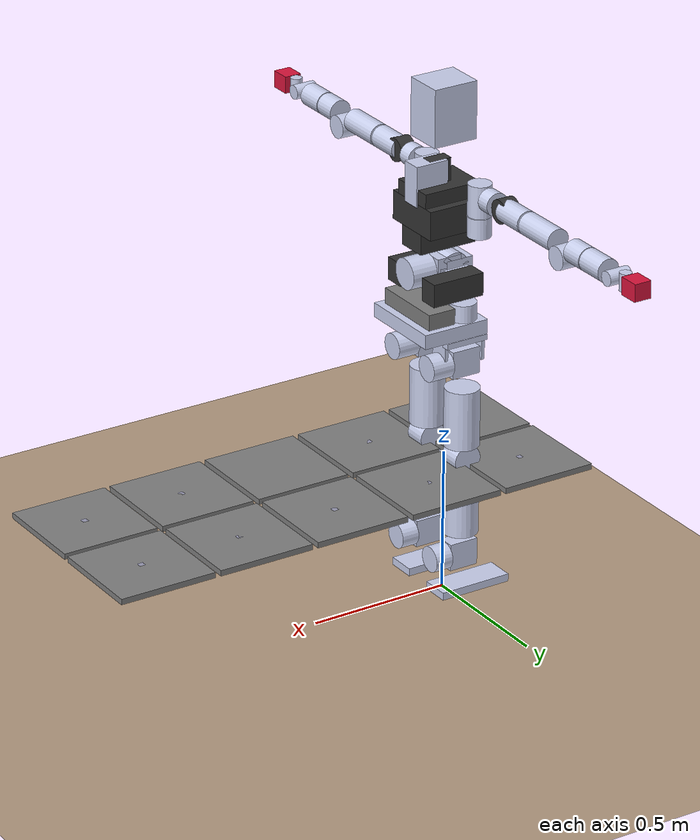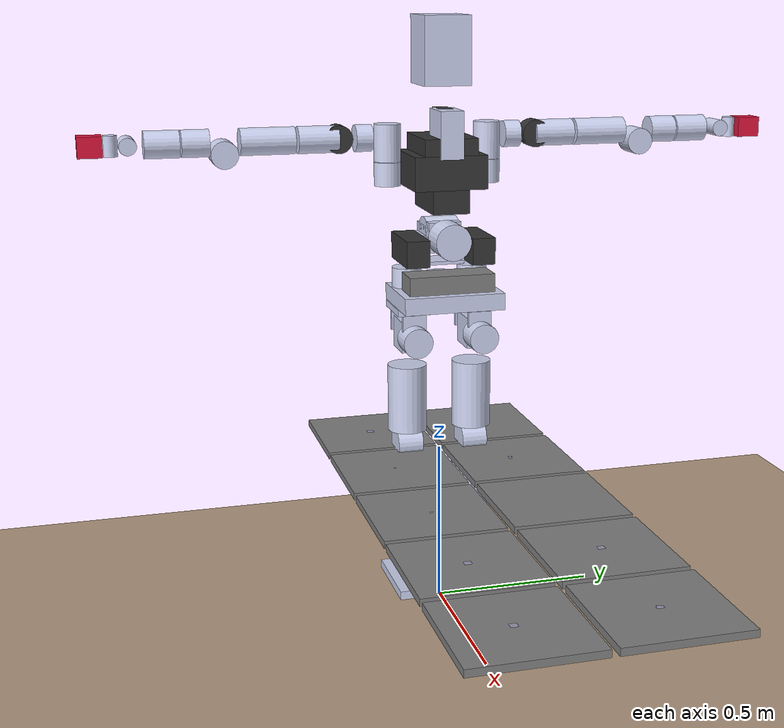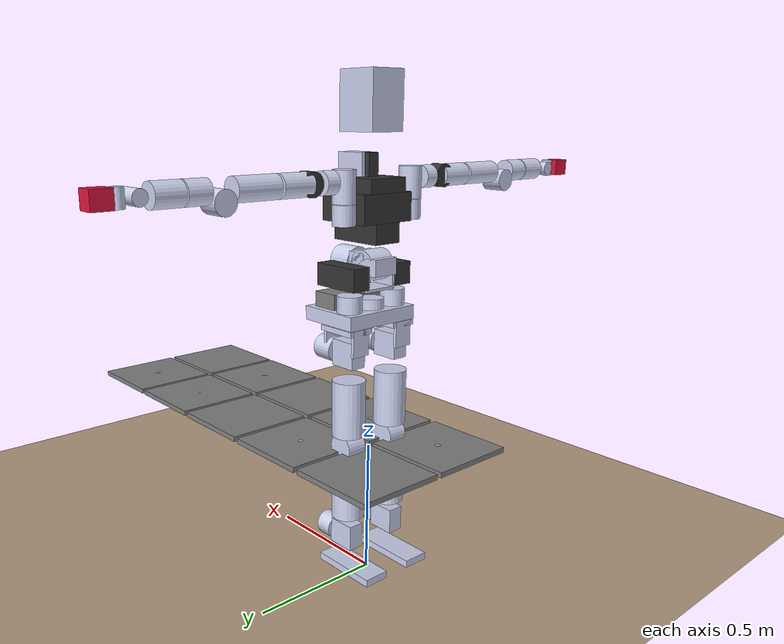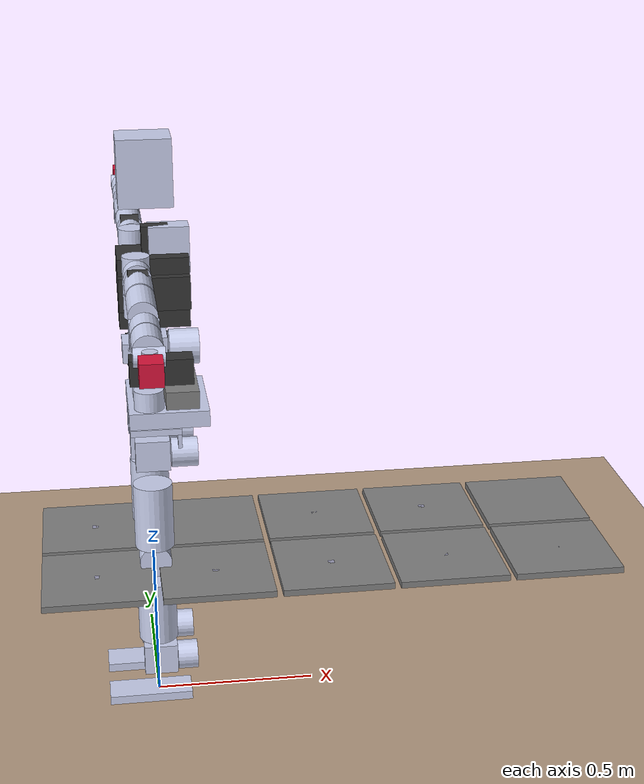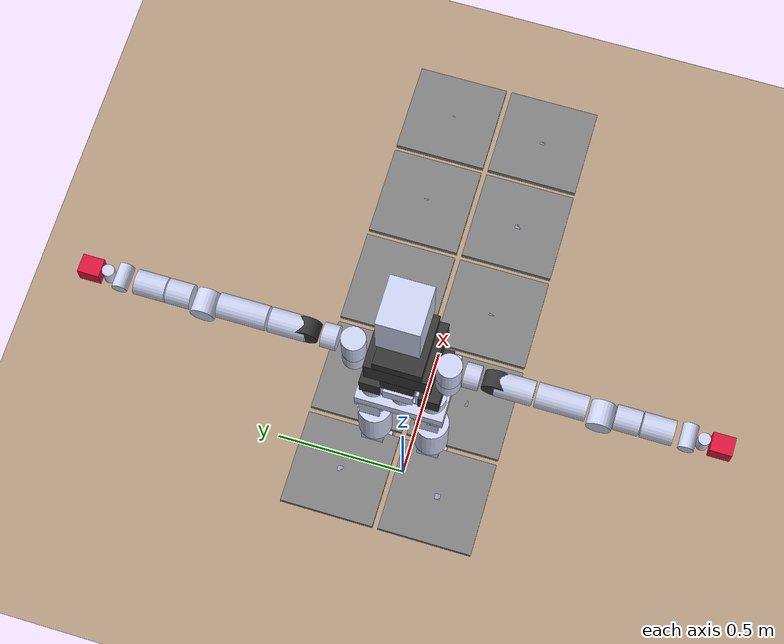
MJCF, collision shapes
<mujoco model="dyros_red_description">
    <compiler angle="radian" meshdir="../meshes/"/>

    <include file="red_base.xml"/>

    <size njmax="500" nconmax="100" />

    <default>
        <default class="soft">
            <joint stiffness="100000" damping="2000" />
        </default>
    </default>

    <option timestep='0.0005' iterations="100" tolerance="1e-11" solver="Newton" jacobian="dense" cone="elliptic" noslip_iterations="75" noslip_tolerance="1e-9"/>

    <worldbody>
          <body name="Base_Plate0" pos="-0.18 0.18 0.5">
            <geom type="box" size="0.01 0.01 0.01" class="viz"/>
            <body name="Plate00" pos="0 0 0">
                <geom type="box" size="0.17 0.17 0.01"/>
                <joint name="stjoint0" type="slide" axis="0 0 1" class="soft"/>
            </body>
        </body>

        <body name="Base_Plate1" pos="0.18 -0.18 0.5">
            <geom type="box" size="0.01 0.01 0.01" class="viz"/>
            <body name="Plate01" pos="0 0 0">
                <geom type="box" size="0.17 0.17 0.01"/>
                <joint name="stjoint1" type="slide" axis="0 0 1" class="soft"/>
            </body>
        </body>

        <body name="Base_Plate2" pos="-0.18 -0.18 0.5">
            <geom type="box" size="0.01 0.01 0.01" class="viz"/>
            <body name="Plate02" pos="0 0 0">
                <geom type="box" size="0.17 0.17 0.01"/>
                <joint name="stjoint2" type="slide" axis="0 0 1" class="soft"/>
            </body>
        </body>

        <body name="Base_Plate3" pos="0.18 0.18 0.5">
            <geom type="box" size="0.01 0.01 0.01" class="viz"/>
            <body name="Plate03" pos="0 0 0">
                <geom type="box" size="0.17 0.17 0.01"/>
                <joint name="stjoint3" type="slide" axis="0 0 1" class="soft"/>
            </body>
        </body>

        <body name="Base_Plate4" pos="0.54 -0.18 0.5">
            <geom type="box" size="0.01 0.01 0.01" class="viz"/>
            <body name="Plate04" pos="0 0 0">
                <geom type="box" size="0.17 0.17 0.01"/>
                <joint name="stjoint4" type="slide" axis="0 0 1" class="soft"/>
            </body>
        </body>

        <body name="Base_Plate5" pos="0.54 0.18 0.5">
            <geom type="box" size="0.01 0.01 0.01" class="viz"/>
            <body name="Plate05" pos="0 0 0">
                <geom type="box" size="0.17 0.17 0.01"/>
                <joint name="stjoint5" type="slide" axis="0 0 1" class="soft"/>
            </body>
        </body>

        <body name="Base_Plate6" pos="0.90 0.18 0.5">
            <geom type="box" size="0.01 0.01 0.01" class="viz"/>
            <body name="Plate06" pos="0 0 0">
                <geom type="box" size="0.17 0.17 0.01"/>
                <joint name="stjoint6" type="slide" axis="0 0 1" class="soft"/>
            </body>
        </body>

        <body name="Base_Plate7" pos="0.90 -0.18 0.5">
            <geom type="box" size="0.01 0.01 0.01" class="viz"/>
            <body name="Plate07" pos="0 0 0">
                <geom type="box" size="0.17 0.17 0.01"/>
                <joint name="stjoint7" type="slide" axis="0 0 1" class="soft"/>
            </body>
        </body>

        <body name="Base_Plate8" pos="1.26 -0.18 0.5">
            <geom type="box" size="0.01 0.01 0.01" class="viz"/>
            <body name="Plate08" pos="0 0 0">
                <geom type="box" size="0.17 0.17 0.01"/>
                <joint name="stjoint8" type="slide" axis="0 0 1" class="soft"/>
            </body>
        </body>

        <body name="Base_Plate9" pos="1.26 0.18 0.5">
            <geom type="box" size="0.01 0.01 0.01" class="viz"/>
            <body name="Plate09" pos="0 0 0">
                <geom type="box" size="0.17 0.17 0.01"/>
                <joint name="stjoint9" type="slide" axis="0 0 1" class="soft"/>
            </body>
        </body>
    </worldbody>

    <keyframe>
        <!--Initial Position Setting -->
        <key name="soft" time="0" qpos ="-0.18 0 1.43683 1 0 0 0
								0 0 -0.24 0.6 -0.36 0
								0 0 -0.24 0.6 -0.36 0
								0 0 0
								-0.3 -0.3 -1.5 1.27 2 0 0 0
								0.3 0.3 1.5 -1.27 -2 0 0 0
                                0 0 0 0 0 0 0 0 0 0"/>

    </keyframe>
</mujoco>

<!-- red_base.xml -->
<mujoco>
    <default>
        <joint damping="2.0" frictionloss="0.01"/>
        <motor ctrllimited="true" ctrlrange="-300 300"/>
        <default class="viz">
            <geom contype="0" conaffinity="0" group="1" type="mesh" rgba=".6 .6 .7 1"/>
        </default>
        <!--Since group 2 is collision geom, rendering of group 2 geom is disabled by default in mujoco, but enabling is possible by press '2' on keyboard -->
        <default class="cls">
            <geom group="2" rgba="0.79216 0.81961 0.93333 0.5"/>
        </default>
        <default class="cls_f">
            <geom group="2" rgba="0.79216 0.81961 0.93333 0.1" friction="1 0.005 0.0001"/>
        </default>
        <default class="FTsensor">
            <site type="cylinder" size="0.005 0.005" group="4" rgba=".1 .1 .9 1"/>
        </default>
    </default>
    <visual>
        <quality shadowsize="2048" offsamples="16"/>
        <map stiffness="10" znear="0.05"/>
    </visual>

    <asset>
        <mesh name="Pelvis_link" file="Pelvis_link2.STL" scale="0.001 0.001 0.001"/>
        <mesh name="HipRoll_R_link" file="HipRoll_R_link.STL" />
        <mesh name="HipCenter_R_Link" file="HipCenter_R_Link.STL" />
        <mesh name="Thigh_R_Link" file="Thigh_R_Link.STL" />
        <mesh name="Knee_R_Link" file="Knee_R_Link.STL" />
        <mesh name="AnkleCenter_R_Link" file="AnkleCenter_R_Link.STL" />
        <mesh name="AnkleRoll_R_Link" file="AnkleRoll_R_Link.STL" />
        <mesh name="HipRoll_L_Link" file="HipRoll_L_Link.STL" />
        <mesh name="HipCenter_L_Link" file="HipCenter_L_Link.STL" />
        <mesh name="Thigh_L_Link" file="Thigh_L_Link.STL" />
        <mesh name="Knee_L_Link" file="Knee_L_Link.STL" />
        <mesh name="AnkleCenter_L_Link" file="AnkleCenter_L_Link.STL" />
        <mesh name="AnkleRoll_L_Link" file="AnkleRoll_L_Link.STL" />
        <mesh name="waist1" file="waistyaw.STL" scale="0.001 0.001 0.001"/>
        <mesh name="waist2" file="waist2.STL" />
        <mesh name="upperbody" file="upperbody.STL" />
        <mesh name="R_shoulder1" file="R_shoulder1.STL" />
        <mesh name="R_shoulder2" file="R_shoulder2.STL" />
        <mesh name="R_shoulder3" file="R_shoulder3.STL" />
        <mesh name="R_arm" file="R_arm.STL" />
        <mesh name="R_elbow" file="R_elbow.STL" />
        <mesh name="R_forearm" file="R_forearm.STL" />
        <mesh name="R_wrist1" file="R_wrist1.STL" />
        <mesh name="L_shoulder1" file="L_shoulder1.STL" />
        <mesh name="L_shoulder2" file="L_shoulder2.STL" />
        <mesh name="L_shoulder3" file="L_shoulder3.STL" />
        <mesh name="L_arm" file="L_arm.STL" />
        <mesh name="L_elbow" file="L_elbow.STL" />
        <mesh name="L_forearm" file="L_forearm.STL" />
        <mesh name="L_wrist1" file="L_wrist1.STL" />
        <mesh name="neck" file="neck.STL" />
        <mesh name="head" file="head.STL" />
        <mesh name="hand" file="wrist2joint.STL" scale="0.001 0.001 0.001"/>
        <!--texture type="skybox" builtin="gradient" width="128" height="128" rgb1="1 1 1" rgb2="0 0 0"/-->
        <texture type="skybox" builtin="gradient" width="128" height="128" rgb1="0.4 0.6 0.8" rgb2="0 0 0"/>
        <texture name="texgeom" type="cube" builtin="flat" mark="cross" width="128" height="128" rgb1="0.6 0.6 0.6" rgb2="0.6 0.6 0.6" markrgb="1 1 1"/>
        <texture name="texplane" type="2d" builtin="checker" rgb1=".4 .4 .4" rgb2=".6 .6 .6" width="512" height="512"/>
        <material name='geom' texture="texgeom" texuniform="true"/>
        <material name='MatPlane' reflectance='0.3' texture="texplane" texrepeat="1 1" texuniform="true"/>
        <material name='MatPlane2' reflectance='0.3' />
    </asset>

    <worldbody>
        <geom name="ground" type="plane" pos="0 0 0" size="10 10 .05" rgba="0.7 0.6 0.5 1" material="MatPlane2" group="3"/>

        <!--geom pos="0 0 0" type="plane" size="10 10 .5" rgba=".7 .7 .7 1" material="MatPlane"/-->

        <!--geom name="box" type="box" size="0.5 0.5 0.5" pos="-1.5 0 0.5"/-->
        <!--geom name="box2" type="box" size="0.2 0.2 0.5" pos="-1.5 0 1.2"/-->
        <light directional="true" diffuse=".8 .8 .8" pos="0 0 10" dir="0 0 -10"/>
        <light directional="true" diffuse=".5 .5 .5" pos="10 0 0" dir="-10 0 0"/>
        <!--light mode='targetbodycom' target='base_link' directional='false' diffuse='.8 .8 .8' specular='0.8 0.8 0.8' pos='0 0 10.0' dir='0 0 -1'/-->

        <body name="base_link" pos="0 0 1" euler="0 0 3.1415">
            <joint name="virtual_joint" type="free" limited='false' frictionloss="0" damping="0" stiffness="0" armature="0"/>
            <inertial pos="-0.0099622 0 0.012618" quat="0.5 0.5 -0.5 0.5" mass="0.90054" diaginertia="0.010198 0.0094751 0.0022311" />
            <geom class="viz" rgba="0.20313 0.20313 0.20313 1" quat="0.5 0.5 0.5 0.5" mesh="Pelvis_link" />
            <geom size="0.045 0.044" pos="0 0 0.019" type="cylinder" class="cls" />
            <geom size="0.045 0.055" pos="0 0.1025 0.03" type="cylinder" class="cls" />
            <geom size="0.045 0.055" pos="0 -0.1025 0.03" type="cylinder" class="cls" />
            <geom size="0.12 0.1525 0.025" pos="-0.058 0 0" type="box" class="cls" />
            <geom size="0.05 0.13 0.05" pos="-0.1 0 0.03" type="box" group="1"/>
            <site name="Pelvis_IMU" type="cylinder" size="0.005 0.005" group="4" rgba=".1 .1 .9 1"/>
            <body name="R_HipRoll_Link" pos="0 -0.1025 -0.1225">
                <inertial pos="-0.06477 0 0.05149" quat="-4.55125e-06 0.706109 4.5641e-06 0.708103" mass="2.679" diaginertia="0.114073 0.114073 0.114073" />
                <joint name="R_HipRoll_Joint" pos="0 0 0" axis="0 0 1" limited="true" range="-3.14 3.14" />
                <geom class="viz" rgba="0.20313 0.20313 0.20313 1" mesh="HipRoll_R_link" />
                <geom size="0.045 0.04" pos="-0.1 0 0" quat="0.707107 0 0.707107 0" type="cylinder" class="cls" />
                <geom size="0.077 0.05 0.01" pos="-0.016 0 0.085" type="box" class="cls" />
                <geom size="0.006 0.036 0.0475" pos="0.055 0 0.0475" type="box" class="cls" />
                <geom size="0.006 0.036 0.0475" pos="-0.087 0 0.0475" type="box" class="cls" />
                <body name="R_HipCenter_Link" pos="0 0 0">
                    <inertial pos="-0.04801 -0.0022 2e-05" quat="0.999982 -0.00595644 4.6683e-06 -2.7807e-08" mass="2.67" diaginertia="0.124407 0.124407 0.124407" />
                    <joint name="R_HipCenter_Joint" pos="0 0 0" axis="1 0 0" limited="true" range="-3.14 3.14" />
                    <geom class="viz" rgba="0.20313 0.20313 0.20313 1" mesh="HipCenter_R_Link" />
                    <geom size="0.05225 0.03 0.0475" pos="-0.0045 0 0" type="box" class="cls" />
                    <body name="R_Thigh_Link" pos="0 0 0">
                        <inertial pos="-0.00042 -0.00032 -0.18904" quat="0.707068 0.00145661 -0.000977354 0.707144" mass="5.366" diaginertia="0.339107 0.339107 0.339107" />
                        <joint name="R_Thigh_Joint" pos="0 0 0" axis="0 1 0" limited="true" range="-3.14 3.14" />
                        <geom size="0.049 0.038815" pos="0 0 -0.35" quat="0.707107 0.707107 0 0" type="cylinder" class="cls" />
                        <geom size="0.06 0.10375" pos="0 0 -0.2023" type="cylinder" class="cls" />
                        <geom class="viz" rgba="0.85938 0.07813 0.23438 1" mesh="Thigh_R_Link" />
                        <body name="R_Knee_Link" pos="0 0 -0.35">
                            <inertial pos="0.00429 0.00214 -0.1428" quat="0.707067 0.00548297 0.00738884 0.707087" mass="3.883" diaginertia="0.23895 0.23895 0.23895" />
                            <joint name="R_Knee_Joint" pos="0 0 0" axis="0 1 0" limited="true" range="0 2.62" />
                            <geom class="viz" rgba="0.85938 0.07813 0.23438 1" mesh="Knee_R_Link" />
                            <geom size="0.06 0.1" pos="0 0 -0.175" type="cylinder" class="cls" />
                            <body name="R_AnkleCenter_Link" pos="0 0 -0.35">
                                <inertial pos="-0.00419 -0.0018 -0.0003" quat="0.498858 0.50114 0.501134 0.498863" mass="2.51" diaginertia="0.139901 0.139901 0.139901" />
                                <joint name="R_AnkleCenter_Joint" pos="0 0 0" axis="0 1 0" limited="true" range="-3.14 3.14" />
                                <geom class="viz" rgba="0.20313 0.20313 0.20313 1" mesh="AnkleCenter_R_Link" />
                                <geom size="0.05225 0.03 0.0475" pos="-0.0045 0 0" type="box" class="cls" />
                                <body name="R_AnkleRoll_Link" pos="0 0 0">
                                    <inertial pos="-0.00802 0 -0.08535" quat="0.999815 -0.000353889 0.0192239 9.30274e-05" mass="3.464" diaginertia="0.07616 0.07616 0.07616" />
                                    <joint name="R_AnkleRoll_Joint" pos="0 0 0" axis="1 0 0" limited="true" range="-3.14 3.14" />
                                    <geom class="viz" rgba="0.85938 0.07813 0.23438 1" mesh="AnkleRoll_R_Link" />
                                    <geom size="0.045 0.03125" pos="-0.08875 0 0" quat="0.707107 0 -0.707107 0" type="cylinder" class="cls" />
                                    <body name="R_Foot_Plate" pos="0 0 -0.1233">
                                        <inertial pos="0.0 0.0 0.0" quat="0.0 0.0 0 1" mass="0.0001" diaginertia="0.0001 0.0001 0.0001" />
                                        <geom size="0.13 0.05 0.0135" pos="0.0317 0 0" type="box" class="cls_f"/>
                                        <site class="FTsensor" name="RF_FT" pos="0 0 0.0135"/>
                                    </body>
                                </body>
                            </body>
                        </body>
                    </body>
                </body>
            </body>
            <body name="L_HipRoll_Link" pos="0 0.1025 -0.1225">
                <inertial pos="-0.06477 0 0.05149" quat="-4.55125e-06 0.706109 4.5641e-06 0.708103" mass="2.679" diaginertia="0.114073 0.114073 0.114073" />
                <joint name="L_HipRoll_Joint" pos="0 0 0" axis="0 0 1" limited="true" range="-3.14 3.14" />
                <geom class="viz" rgba="0.20313 0.20313 0.20313 1" mesh="HipRoll_L_Link" />
                <geom size="0.045 0.04" pos="-0.1 0 0" quat="0.707107 0 0.707107 0" type="cylinder" class="cls" />
                <geom size="0.077 0.05 0.01" pos="-0.016 0 0.085" type="box" class="cls" />
                <geom size="0.006 0.036 0.0475" pos="0.055 0 0.0475" type="box" class="cls" />
                <geom size="0.006 0.036 0.0475" pos="-0.087 0 0.0475" type="box" class="cls" />
                <body name="L_HipCenter_Link" pos="0 0 0">
                    <inertial pos="-0.04801 0.0022 2e-05" quat="0.999982 -0.00595644 4.6683e-06 -2.7807e-08" mass="2.67" diaginertia="0.124407 0.124407 0.124407" />
                    <joint name="L_HipCenter_Joint" pos="0 0 0" axis="1 0 0" limited="true" range="-3.14 3.14" />
                    <geom class="viz" rgba="0.20313 0.20313 0.20313 1" mesh="HipCenter_L_Link" />
                    <geom size="0.05225 0.03 0.0475" pos="-0.0045 0 0" type="box" class="cls" />
                    <body name="L_Thigh_Link" pos="0 0 0">
                        <inertial pos="-0.00042 0.00032 -0.18904" quat="0.707068 0.00145661 -0.000977354 0.707144" mass="5.366" diaginertia="0.339107 0.339107 0.339107" />
                        <joint name="L_Thigh_Joint" pos="0 0 0" axis="0 1 0" limited="true" range="-3.14 3.14" />
                        <geom class="viz" rgba="0.85938 0.07813 0.23438 1" mesh="Thigh_L_Link" />
                        <geom size="0.049 0.038815" pos="0 0 -0.35" quat="0.707107 0.707107 0 0" type="cylinder" class="cls" />
                        <geom size="0.06 0.10375" pos="0 0 -0.2023" type="cylinder" class="cls" />
                        <body name="L_Knee_Link" pos="0 0 -0.35">
                            <inertial pos="0.00429 -0.00214 -0.1428" quat="0.707067 0.00548297 0.00738884 0.707087" mass="3.883" diaginertia="0.23895 0.23895 0.23895" />
                            <joint name="L_Knee_Joint" pos="0 0 0" axis="0 1 0" limited="true" range="0 2.62" />
                            <geom class="viz" rgba="0.85938 0.07813 0.23438 1" mesh="Knee_L_Link" />
                            <geom size="0.06 0.1" pos="0 0 -0.175" type="cylinder" class="cls" />
                            <body name="L_AnkleCenter_Link" pos="0 0 -0.35">
                                <inertial pos="-0.00419 0.0018 -0.0003" quat="0.498858 0.50114 0.501134 0.498863" mass="2.51" diaginertia="0.139901 0.139901 0.139901" />
                                <joint name="L_AnkleCenter_Joint" pos="0 0 0" axis="0 1 0" limited="true" range="-3.14 3.14" />
                                <geom class="viz" rgba="0.20313 0.20313 0.20313 1" mesh="AnkleCenter_L_Link" />
                                <geom size="0.05225 0.03 0.0475" pos="-0.0045 0 0" type="box" class="cls" />
                                <body name="L_AnkleRoll_Link" pos="0 0 0">
                                    <inertial pos="-0.00802 0 -0.08535" quat="0.999815 -0.000353889 0.0192239 9.30274e-05" mass="3.464" diaginertia="0.07616 0.07616 0.07616" />
                                    <joint name="L_AnkleRoll_Joint" pos="0 0 0" axis="1 0 0" limited="true" range="-3.14 3.14" />
                                    <geom class="viz" rgba="0.85938 0.07813 0.23438 1" mesh="AnkleRoll_L_Link" />
                                    <geom size="0.045 0.03125" pos="-0.08875 0 0" quat="0.707107 0 -0.707107 0" type="cylinder" class="cls" />
                                    <body name="L_Foot_Plate" pos="0 0 -0.1233">
                                        <inertial pos="0.0 0.0 0.0" quat="0.0 0.0 0 1" mass="0.0001" diaginertia="0.0001 0.0001 0.0001" />
                                        <geom size="0.13 0.05 0.0135" pos="0.0317 0 0" type="box" class="cls_f"/>
                                        <site class="FTsensor" name="LF_FT" pos="0 0 0.0135"/>
                                    </body>
                                </body>
                            </body>
                        </body>
                    </body>
                </body>
            </body>
            <body name="Waist1_Link" pos="0 0 0.18">
                <inertial pos="0 0 -0.04182" quat="0.707107 0.707107 0 0" mass="0.74235" diaginertia="0.00325468 0.00270188 0.00165546" />
                <joint name="Waist1_Joint" pos="0 0 0" axis="0 0 1" limited="true" range="-2.094 2.094" />
                <geom class="viz" rgba="0.85938 0.07813 0.23438 1" pos="0 0 -0.085" quat="0 0.707107 0 0.707107" mesh="waist1" />
                <geom size="0.047 0.065 0.005" pos="0 0 -0.081" type="box" class="cls" />
                <geom size="0.047 0.005 0.0455" pos="0 0.06 -0.0405" type="box" class="cls" />
                <geom size="0.047 0.005 0.0455" pos="0 -0.06 -0.0405" type="box" class="cls" />
                <geom size="0.095 0.035 0.04" pos="-0.04 -0.1 -0.035" type="box" rgba="0.20313 0.20313 0.20313 1" group="1"/>
                <geom size="0.095 0.035 0.04" pos="-0.04 0.1 -0.035" type="box" rgba="0.20313 0.20313 0.20313 1" group="1"/>
                <body name="Waist2_Link" pos="0 0 0">
                    <inertial pos="-0.00065 0 1e-05" quat="0 0.707107 0 0.707107" mass="3.27104" diaginertia="0.00602216 0.0049746 0.00462286" />
                    <joint name="Waist2_Joint" pos="0 0 0" axis="0 1 0" limited="true" range="-2.094 2.094" />
                    <geom class="viz" rgba="0.20313 0.20313 0.20313 1" mesh="waist2" />
                    <geom size="0.055 0.05" quat="0.707107 0.707107 0 0" type="cylinder" class="cls" />
                    <geom size="0.05 0.05 0.03" pos="0.02 0 0" type="box" class="cls" />
                    <geom size="0.045 0.05 0.0455" pos="-0.02 0 0" type="box" class="cls" />
                    <body name="Upperbody_Link" pos="0 0 0">
                        <inertial pos="-0.04733 0 0.16266" quat="0.991857 0 -0.127356 0" mass="16.4339" diaginertia="0.274087 0.242243 0.173295" />
                        <joint name="Upperbody_Joint" pos="0 0 0" axis="-1 0 0" limited="true" range="-2.094 2.094" />
                        <geom class="viz" rgba="0.85938 0.07813 0.23438 1" mesh="upperbody" />
                        <geom size="0.105 0.11 0.05" pos="-0.03 0 0.2" type="box" rgba="0.20313 0.20313 0.20313 1" group="1"/>
                        <geom size="0.105 0.08 0.025" pos="-0.03 0 0.275" type="box" rgba="0.20313 0.20313 0.20313 1" group="1"/>
                        <geom size="0.105 0.055 0.035" pos="-0.03 0 0.115" type="box" rgba="0.20313 0.20313 0.20313 1" group="1"/>
                        <geom size="0.04 0.022 0.07" pos="-0.04 0 0.31" type="box" rgba="0.20313 0.20313 0.20313 1" group="1" />

                        <geom size="0.105 0.11 0.05" pos="-0.03 0 0.2" type="box" contype="0" conaffinity="0" class="cls"/>
                        <geom size="0.105 0.08 0.025" pos="-0.03 0 0.275" type="box" contype="0" conaffinity="0" class="cls"/>
                        <geom size="0.105 0.055 0.035" pos="-0.03 0 0.115" type="box" contype="0" conaffinity="0" class="cls"/>

                        <geom size="0.06 0.035 0.07" pos="-0.08 0 0.31" type="box" class="cls" />
                        <geom size="0.054 0.045" pos="-0.115 0 0" quat="0.707107 0 0.707107 0" type="cylinder" class="cls" />
                        <geom size="0.04 0.035" pos="0.023 0.154 0.185" type="cylinder" class="cls" />
                        <geom size="0.04 0.035" pos="0.023 -0.154 0.185" type="cylinder" class="cls" />

                        <geom class="viz" rgba="0.20313 0.20313 0.20313 1" pos="-0.036 0 0.3795" mesh="neck" />
                        <geom class="viz" rgba="0.85938 0.07813 0.23438 1" pos="-0.036 0 0.407" mesh="head" />
                        <geom class="cls" size="0.08 0.07 0.1" type="box" pos="-0.016 0 0.547"/>
                        <camera name="Head camera" euler="0 -1.5708 -1.5708" fovy="80" pos="0.084 0 0.647"/>

                        <body name="R_Shoulder1_Link" pos="0.023 -0.154 0.2275">
                            <inertial pos="-3e-05 -0.00397 0.06029" quat="0.678735 -0.0962618 0.0973029 0.721516" mass="1.6762" diaginertia="0.00195894 0.0019255 0.00165624" />
                            <joint name="R_Shoulder1_Joint" pos="0 0 0" axis="0 0 1" limited="true" range="-1.54 2.09" />
                            <geom class="viz" rgba="0.85938 0.07813 0.23438 1" mesh="R_shoulder1" />
                            <geom size="0.04 0.055" pos="0 0 0.05" type="cylinder" class="cls" />
                            <body name="R_Shoulder2_Link" pos="0 -0.0341 0.065">
                                <inertial pos="0.00107 -0.0491 -1e-05" quat="0.51724 0.479014 -0.520322 0.481948" mass="0.4016" diaginertia="0.00106758 0.000992068 0.000622085" />
                                <joint name="R_Shoulder2_Joint" pos="0 0 0" axis="0 -1 0" limited="true" range="-3.14159 3.14159" />
                                <geom class="viz" rgba="0.20313 0.20313 0.20313 1" mesh="R_shoulder2" />
                                <geom size="0.04 0.025" pos="0 -0.04 0" quat="0.707107 0.707107 0 0" type="cylinder" class="cls" />
                                <body name="R_Shoulder3_Link" pos="0 -0.115 0">
                                    <inertial pos="0.00262 -0.04826 0.00023" quat="0.708306 0.705235 0.0242641 0.0189048" mass="2.90141" diaginertia="0.00846389 0.00829694 0.00247136" />
                                    <joint name="R_Shoulder3_Joint" pos="0 0 0" axis="-1 0 0" limited="true" range="-1.9199 1.9199" />
                                    <geom size="0.041 0.028" pos="0.0 0 0" quat="0.707107 0 0.707107 0" type="cylinder" class="viz" rgba="0.20313 0.20313 0.20313 1"/>
                                    <geom class="viz" rgba="0.20313 0.20313 0.20313 1" mesh="R_shoulder3" />
                                    <geom size="0.04 0.06" pos="0 -0.06 0" quat="0.707107 0.707107 0 0" type="cylinder" class="cls" />
                                    <body name="R_Armlink_Link" pos="0 -0.1281 0">
                                        <inertial pos="0.01896 -0.11642 -0.0119" quat="0.503607 0.520285 -0.555379 0.408947" mass="0.43517" diaginertia="0.00318243 0.00291909 0.000624466" />
                                        <joint name="R_Armlink_Joint" pos="0 0 0" axis="0 -1 0" limited="true" range="-3.14159 3.14159" />
                                        <geom size="0.04 0.08" pos="0 -0.08 0" quat="0.707107 0.707107 0 0" type="cylinder" class="cls" />
                                        <geom class="viz" rgba="0.85938 0.07813 0.23438 1" mesh="R_arm" />
                                        <body name="R_Elbow_Link" pos="0 -0.207 -0.0325">
                                            <inertial pos="-0.00136 -0.05256 0.01764" quat="0.517663 0.708306 -0.39581 0.27141" mass="1.96511" diaginertia="0.0065354 0.00631431 0.00138011" />
                                            <joint name="R_Elbow_Joint" pos="0 0 0" axis="1 0 0" limited="true" range="-2.967 3.14159" />
                                            <geom size="0.034 0.027" pos="0.003 0 0" quat="0.707107 0 0.707107 0" type="cylinder" class="viz" rgba="0.20313 0.20313 0.20313 1"/>
                                            <geom size="0.04 0.04" pos="0 -0.08 0.0325" quat="0.707107 0.707107 0 0" type="cylinder" class="cls" />
                                            <geom size="0.04 0.04" quat="0.707107 0 0.707107 0" type="cylinder" class="cls" />
                                            <geom class="viz" rgba="0.20313 0.20313 0.20313 1" mesh="R_elbow" />
                                            <body name="R_Forearm_Link" pos="0 -0.1244 0.0325">
                                                <inertial pos="0.01426 -0.0767 0.00033" quat="0.55187 0.502809 -0.506596 0.431257" mass="0.30234" diaginertia="0.00126963 0.00106149 0.000388409" />
                                                <joint name="R_Forearm_Joint" pos="0 0 0" axis="0 -1 0" limited="true" range="-3.14159 3.14159" />
                                                <geom size="0.04 0.05" pos="0 -0.05 0" quat="0.707107 0.707107 0 0" type="cylinder" class="cls" />
                                                <geom size="0.025 0.04" pos="0 -0.1451 0" quat="0.707107 0 0.707107 0" type="cylinder" class="cls" />
                                                <geom class="viz" rgba="0.85938 0.07813 0.23438 1" mesh="R_forearm" />
                                                <body name="R_Wrist1_Link" pos="0 -0.1451 0">
                                                    <inertial pos="-0.00158 -0.02153 3e-05" quat="0.521107 0.474698 -0.525252 0.476676" mass="0.70923" diaginertia="0.00068319 0.000650504 0.000394066" />
                                                    <joint name="R_Wrist1_Joint" pos="0 0 0" axis="1 0 0" limited="true" range="-3.14159 3.14159" />
                                                    <geom size="0.02 0.03" pos="0 -0.046 0" type="cylinder" class="cls" />
                                                    <geom class="viz" rgba="0.20313 0.20313 0.20313 1" mesh="R_wrist1" />
                                                    <body name="R_Wrist2_Link" pos="0 -0.046 0">
                                                        <inertial pos="0.00063 -0.0536 0.00178" quat="0.707107 0.707107 0 0" mass="1" diaginertia="0.00086545 0.000820823 0.000696917" />
                                                        <joint name="R_Wrist2_Joint" pos="0 0 0" axis="0 0 1" limited="true" range="-2.094 2.094" />
                                                        <geom size="0.03 0.035 0.03" pos="0 -0.057 0" type="box" rgba="0.85938 0.07813 0.23438 1" group="1"/>
                                                        <site class="FTsensor" name="RH_FT" pos="0 0 0"/>

                                                    </body>
                                                </body>
                                            </body>
                                        </body>
                                    </body>
                                </body>
                            </body>
                        </body>
                        <body name="L_Shoulder1_Link" pos="0.023 0.154 0.2275">
                            <inertial pos="-3e-05 0.00397 0.06029" quat="0.721516 0.0973029 -0.0962618 0.678735" mass="1.6762" diaginertia="0.00195894 0.0019255 0.00165624" />
                            <joint name="L_Shoulder1_Joint" pos="0 0 0" axis="0 0 1" limited="true" range="-2.09 1.54" />
                            <geom class="viz" rgba="0.85938 0.07813 0.23438 1" mesh="L_shoulder1" />
                            <geom size="0.04 0.055" pos="0 0 0.05" type="cylinder" class="cls" />
                            <body name="L_Shoulder2_Link" pos="0 0.0341 0.065">
                                <inertial pos="0.00107 0.0491 -1e-05" quat="0.479014 0.51724 -0.481948 0.520322" mass="0.4016" diaginertia="0.00106758 0.000992068 0.000622085" />
                                <joint name="L_Shoulder2_Joint" pos="0 0 0" axis="0 1 0" limited="true" range="-3.14159 3.14159" />
                                <geom class="viz" rgba="0.20313 0.20313 0.20313 1" mesh="L_shoulder2" />
                                <geom size="0.04 0.025" pos="0 0.04 0" quat="0.707107 0.707107 0 0" type="cylinder" class="cls" />
                                <body name="L_Shoulder3_Link" pos="0 0.115 0">
                                    <inertial pos="0.00262 0.04826 0.00023" quat="0.705235 0.708306 -0.0189048 -0.0242641" mass="2.90141" diaginertia="0.00846389 0.00829694 0.00247136" />
                                    <joint name="L_Shoulder3_Joint" pos="0 0 0" axis="-1 0 0" limited="true" range="-1.9199 1.9199" />
                                    <geom size="0.041 0.028" pos="0.0 0 0" quat="0.707107 0 0.707107 0" type="cylinder" class="viz" rgba="0.20313 0.20313 0.20313 1"/>
                                    <geom size="0.04 0.06" pos="0 0.06 0" quat="0.707107 0.707107 0 0" type="cylinder" class="cls" />
                                    <geom class="viz" rgba="0.20313 0.20313 0.20313 1" mesh="L_shoulder3" />
                                    <body name="L_Armlink_Link" pos="0 0.1281 0">
                                        <inertial pos="0.01896 0.11642 -0.0119" quat="0.520285 0.503607 -0.408947 0.555379" mass="0.43517" diaginertia="0.00318243 0.00291909 0.000624466" />
                                        <joint name="L_Armlink_Joint" pos="0 0 0" axis="0 1 0" limited="true" range="-3.14159 3.14159" />
                                        <geom size="0.04 0.08" pos="0 0.08 0" quat="0.707107 0.707107 0 0" type="cylinder" class="cls" />
                                        <geom class="viz" rgba="0.85938 0.07813 0.23438 1" mesh="L_arm" />
                                        <body name="L_Elbow_Link" pos="0 0.207 -0.0325">
                                            <inertial pos="-0.00136 0.05256 0.01764" quat="0.708306 0.517663 -0.27141 0.39581" mass="1.96511" diaginertia="0.0065354 0.00631431 0.00138011" />
                                            <joint name="L_Elbow_Joint" pos="0 0 0" axis="1 0 0" limited="true" range="-3.14159 2.8" />
                                            <geom size="0.034 0.027" pos="0.003 0 0" quat="0.707107 0 0.707107 0" type="cylinder" class="viz" rgba="0.20313 0.20313 0.20313 1"/>
                                            <geom size="0.04 0.04" pos="0 0.08 0.0325" quat="0.707107 0.707107 0 0" type="cylinder" class="cls" />
                                            <geom size="0.04 0.04" quat="0.707107 0 0.707107 0" type="cylinder" class="cls" />
                                            <geom class="viz" rgba="0.20313 0.20313 0.20313 1" mesh="L_elbow" />
                                            <body name="L_Forearm_Link" pos="0 0.1244 0.0325">
                                                <inertial pos="0.01426 0.0767 0.00033" quat="0.502809 0.55187 -0.431257 0.506596" mass="0.30234" diaginertia="0.00126963 0.00106149 0.000388409" />
                                                <joint name="L_Forearm_Joint" pos="0 0 0" axis="0 1 0" limited="true" range="-3.14159 3.14159" />
                                                <geom class="viz" rgba="0.85938 0.07813 0.23438 1" mesh="L_forearm" />
                                                <geom size="0.04 0.05" pos="0 0.05 0" quat="0.707107 0.707107 0 0" type="cylinder" class="cls" />
                                                <geom size="0.025 0.04" pos="0 0.1451 0" quat="0.707107 0 0.707107 0" type="cylinder" class="cls" />
                                                <body name="L_Wrist1_Link" pos="0 0.1451 0">
                                                    <inertial pos="-0.00158 0.02153 3e-05" quat="0.474698 0.521107 -0.476676 0.525252" mass="0.70923" diaginertia="0.00068319 0.000650504 0.000394066" />
                                                    <joint name="L_Wrist1_Joint" pos="0 0 0" axis="1 0 0" limited="true" range="-3.14159 3.14159" />
                                                    <geom class="viz" rgba="0.20313 0.20313 0.20313 1" mesh="L_wrist1" />
                                                    <geom size="0.02 0.03" pos="0 0.046 0" type="cylinder" class="cls" />
                                                    <body name="L_Wrist2_Link" pos="0 0.046 0">
                                                        <inertial pos="0.00063 0.0536 0.00178" quat="0.707107 0.707107 0 0" mass="1" diaginertia="0.00086545 0.000820823 0.000696917" />
                                                        <joint name="L_Wrist2_Joint" pos="0 0 0" axis="0 0 1" limited="true" range="-2.094 2.094" />
                                                        <geom size="0.03 0.035 0.03" pos="0 0.057 0" type="box" rgba="0.85938 0.07813 0.23438 1" group="1"/>
                                                        <site class="FTsensor" name="LH_FT" pos="0 0 0"/>
                                                    </body>
                                                </body>
                                            </body>
                                        </body>
                                    </body>
                                </body>
                            </body>
                        </body>

                    </body>
                </body>
            </body>
        </body>
    </worldbody>
    <actuator>
        <motor name="R_HipRoll_Motor" joint="R_HipRoll_Joint"/>
        <motor name="R_HipCenter_Motor" joint="R_HipCenter_Joint"/>
        <motor name="R_Thigh_Motor" joint="R_Thigh_Joint"/>
        <motor name="R_Knee_Motor" joint="R_Knee_Joint"/>
        <motor name="R_AnkleCenter_Motor" joint="R_AnkleCenter_Joint"/>
        <motor name="R_AnkleRoll_Motor" joint="R_AnkleRoll_Joint"/>
        <motor name="L_HipRoll_Motor" joint="L_HipRoll_Joint"/>
        <motor name="L_HipCenter_Motor" joint="L_HipCenter_Joint"/>
        <motor name="L_Thigh_Motor" joint="L_Thigh_Joint"/>
        <motor name="L_Knee_Motor" joint="L_Knee_Joint"/>
        <motor name="L_AnkleCenter_Motor" joint="L_AnkleCenter_Joint"/>
        <motor name="L_AnkleRoll_Motor" joint="L_AnkleRoll_Joint"/>
        <motor name="Waist1_Motor" joint="Waist1_Joint"/>
        <motor name="Waist2_Motor" joint="Waist2_Joint"/>
        <motor name="Upperbody_Motor" joint="Upperbody_Joint"/>
        <!--motor name="Neck_Motor" joint="Neck_Joint"/-->
        <!--motor name="Head_Motor" joint="Head_Joint"/-->
        <motor name="R_Shoulder1_Motor" joint="R_Shoulder1_Joint"/>
        <motor name="R_Shoulder2_Motor" joint="R_Shoulder2_Joint"/>
        <motor name="R_Shoulder3_Motor" joint="R_Shoulder3_Joint"/>
        <motor name="R_Armlink_Motor" joint="R_Armlink_Joint"/>
        <motor name="R_Elbow_Motor" joint="R_Elbow_Joint"/>
        <motor name="R_Forearm_Motor" joint="R_Forearm_Joint"/>
        <motor name="R_Wrist1_Motor" joint="R_Wrist1_Joint"/>
        <motor name="R_Wrist2_Motor" joint="R_Wrist2_Joint"/>
        <motor name="L_Shoulder1_Motor" joint="L_Shoulder1_Joint"/>
        <motor name="L_Shoulder2_Motor" joint="L_Shoulder2_Joint"/>
        <motor name="L_Shoulder3_Motor" joint="L_Shoulder3_Joint"/>
        <motor name="L_Armlink_Motor" joint="L_Armlink_Joint"/>
        <motor name="L_Elbow_Motor" joint="L_Elbow_Joint"/>
        <motor name="L_Forearm_Motor" joint="L_Forearm_Joint"/>
        <motor name="L_Wrist1_Motor" joint="L_Wrist1_Joint"/>
        <motor name="L_Wrist2_Motor" joint="L_Wrist2_Joint"/>
    </actuator>

    <sensor>
        <force name="LH_Force_sensor" site="LH_FT"/>
        <torque name="LH_Torque_sensor" site="LH_FT"/>
        <force name="RH_Force_sensor" site="RH_FT"/>
        <torque name="RH_Torque_sensor" site="RH_FT"/>
        <force name="LF_Force_sensor" site="LF_FT"/>
        <torque name="LF_Torque_sensor" site="LF_FT"/>
        <force name="RF_Force_sensor" site="RF_FT"/>
        <torque name="RF_Torque_sensor" site="RF_FT"/>
        <accelerometer name="Acc_Pelvis_IMU" site="Pelvis_IMU"/>
        <gyro name="Gyro_Pelvis_IMU" site="Pelvis_IMU"/>
        <magnetometer name="Magnet_Pelvis_IMU" site="Pelvis_IMU"/>
        <framequat name="Pelvis_quat" objtype="site" objname="Pelvis_IMU"/>
        <framelinvel name="Pelvis_linear_vel" objtype="site" objname="Pelvis_IMU"/>
        <frameangvel name="Pelvis_angular_vel" objtype="site" objname="Pelvis_IMU"/>
    </sensor>
</mujoco>
